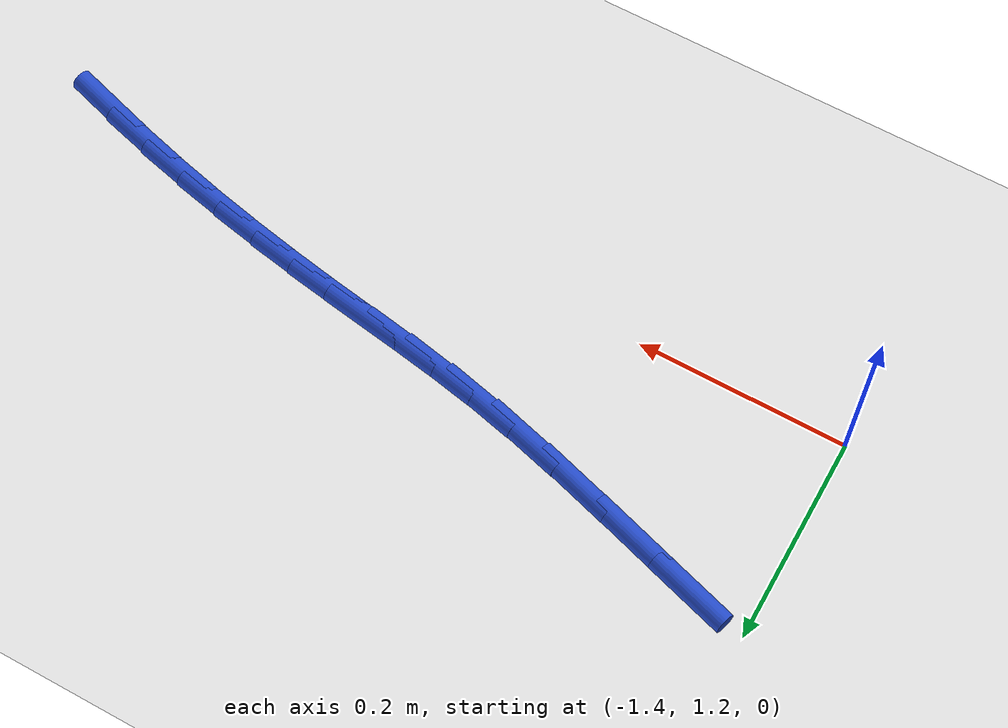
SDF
<sdf version="1.6">
 <world name="default">
  <model name="ground_plane">
   <static>1</static>
   <link name="link">
    <collision name="collision">
     <geometry><plane><normal>0 0 1</normal><size>100 100</size></plane></geometry>
     <surface><friction><ode><mu>100</mu><mu2>50</mu2></ode></friction></surface>
    </collision>
    <visual name="visual">
     <cast_shadows>0</cast_shadows>
     <geometry><plane><normal>0 0 1</normal><size>100 100</size></plane></geometry>
     <material>
      <script><uri>file://media/materials/scripts/gazebo.material</uri><name>Gazebo/WhiteGlow</name></script>
     </material>
    </visual>
   </link>
  </model>
  <model name="line">
   <link name="link_32">
    <pose>-0.6644574654117111 1.2277561059917397 0.01 0 1.57 -0.29490630756532477</pose>
    <collision name="collision">
     <geometry><cylinder><radius>0.01</radius><length>0.08</length></cylinder></geometry>
    </collision>
    <visual name="visual">
     <material>
      <script><name>Gazebo/Blue</name><uri>file://media/materials/scripts/gazebo.material</uri></script>
     </material>
     <geometry><cylinder><radius>0.01</radius><length>0.08</length></cylinder></geometry>
    </visual>
   </link>
   <link name="link_33">
    <pose>-0.7105668616627239 1.241762475067263 0.01 0 1.57 -0.26437578575754683</pose>
    <collision name="collision">
     <geometry><cylinder><radius>0.01</radius><length>0.08</length></cylinder></geometry>
    </collision>
    <visual name="visual">
     <material>
      <script><name>Gazebo/Blue</name><uri>file://media/materials/scripts/gazebo.material</uri></script>
     </material>
     <geometry><cylinder><radius>0.01</radius><length>0.08</length></cylinder></geometry>
    </visual>
   </link>
   <link name="link_34">
    <pose>-0.7567753072986521 1.254271678036543 0.01 0 1.57 -0.23747227886781153</pose>
    <collision name="collision">
     <geometry><cylinder><radius>0.01</radius><length>0.08</length></cylinder></geometry>
    </collision>
    <visual name="visual">
     <material>
      <script><name>Gazebo/Blue</name><uri>file://media/materials/scripts/gazebo.material</uri></script>
     </material>
     <geometry><cylinder><radius>0.01</radius><length>0.08</length></cylinder></geometry>
    </visual>
   </link>
   <link name="link_35">
    <pose>-0.8027489585882469 1.2653991064043624 0.01 0 1.57 -0.2138585798041829</pose>
    <collision name="collision">
     <geometry><cylinder><radius>0.01</radius><length>0.08</length></cylinder></geometry>
    </collision>
    <visual name="visual">
     <material>
      <script><name>Gazebo/Blue</name><uri>file://media/materials/scripts/gazebo.material</uri></script>
     </material>
     <geometry><cylinder><radius>0.01</radius><length>0.08</length></cylinder></geometry>
    </visual>
   </link>
   <link name="link_36">
    <pose>-0.8481539718002589 1.2752601516755047 0.01 0 1.57 -0.19327720304860432</pose>
    <collision name="collision">
     <geometry><cylinder><radius>0.01</radius><length>0.08</length></cylinder></geometry>
    </collision>
    <visual name="visual">
     <material>
      <script><name>Gazebo/Blue</name><uri>file://media/materials/scripts/gazebo.material</uri></script>
     </material>
     <geometry><cylinder><radius>0.01</radius><length>0.08</length></cylinder></geometry>
    </visual>
   </link>
   <link name="link_37">
    <pose>-0.8926565032034385 1.2839702053547524 0.01 0 1.57 -0.1755516325422416</pose>
    <collision name="collision">
     <geometry><cylinder><radius>0.01</radius><length>0.08</length></cylinder></geometry>
    </collision>
    <visual name="visual">
     <material>
      <script><name>Gazebo/Blue</name><uri>file://media/materials/scripts/gazebo.material</uri></script>
     </material>
     <geometry><cylinder><radius>0.01</radius><length>0.08</length></cylinder></geometry>
    </visual>
   </link>
   <link name="link_38">
    <pose>-0.9359227090665372 1.2916446589468895 0.01 0 1.57 -0.16073707792983374</pose>
    <collision name="collision">
     <geometry><cylinder><radius>0.01</radius><length>0.08</length></cylinder></geometry>
    </collision>
    <visual name="visual">
     <material>
      <script><name>Gazebo/Blue</name><uri>file://media/materials/scripts/gazebo.material</uri></script>
     </material>
     <geometry><cylinder><radius>0.01</radius><length>0.08</length></cylinder></geometry>
    </visual>
   </link>
   <link name="link_39">
    <pose>-0.9776432051211034 1.2984090459830482 0.01 0 1.57 -0.15516687904009258</pose>
    <collision name="collision">
     <geometry><cylinder><radius>0.01</radius><length>0.08</length></cylinder></geometry>
    </collision>
    <visual name="visual">
     <material>
      <script><name>Gazebo/Blue</name><uri>file://media/materials/scripts/gazebo.material</uri></script>
     </material>
     <geometry><cylinder><radius>0.01</radius><length>0.08</length></cylinder></geometry>
    </visual>
   </link>
   <link name="link_40">
    <pose>-1.0185002475422786 1.3048000800595643 0.01 0 1.57 -0.1674767321174801</pose>
    <collision name="collision">
     <geometry><cylinder><radius>0.01</radius><length>0.08</length></cylinder></geometry>
    </collision>
    <visual name="visual">
     <material>
      <script><name>Gazebo/Blue</name><uri>file://media/materials/scripts/gazebo.material</uri></script>
     </material>
     <geometry><cylinder><radius>0.01</radius><length>0.08</length></cylinder></geometry>
    </visual>
   </link>
   <link name="link_41">
    <pose>-1.0604883690901856 1.3118986054355204 0.01 0 1.57 -0.1949155802885259</pose>
    <collision name="collision">
     <geometry><cylinder><radius>0.01</radius><length>0.08</length></cylinder></geometry>
    </collision>
    <visual name="visual">
     <material>
      <script><name>Gazebo/Blue</name><uri>file://media/materials/scripts/gazebo.material</uri></script>
     </material>
     <geometry><cylinder><radius>0.01</radius><length>0.08</length></cylinder></geometry>
    </visual>
   </link>
   <link name="link_42">
    <pose>-1.1056922711747488 1.320822854469228 0.01 0 1.57 -0.23080585838114384</pose>
    <collision name="collision">
     <geometry><cylinder><radius>0.01</radius><length>0.08</length></cylinder></geometry>
    </collision>
    <visual name="visual">
     <material>
      <script><name>Gazebo/Blue</name><uri>file://media/materials/scripts/gazebo.material</uri></script>
     </material>
     <geometry><cylinder><radius>0.01</radius><length>0.08</length></cylinder></geometry>
    </visual>
   </link>
   <link name="link_43">
    <pose>-1.156196655205893 1.3326910595189985 0.01 0 1.57 -0.2674565600984572</pose>
    <collision name="collision">
     <geometry><cylinder><radius>0.01</radius><length>0.08</length></cylinder></geometry>
    </collision>
    <visual name="visual">
     <material>
      <script><name>Gazebo/Blue</name><uri>file://media/materials/scripts/gazebo.material</uri></script>
     </material>
     <geometry><cylinder><radius>0.01</radius><length>0.08</length></cylinder></geometry>
    </visual>
   </link>
   <link name="link_44">
    <pose>-1.2138484750460428 1.348488915038708 0.01 0 1.57 -0.2908408814250058</pose>
    <collision name="collision">
     <geometry><cylinder><radius>0.01</radius><length>0.08</length></cylinder></geometry>
    </collision>
    <visual name="visual">
     <material>
      <script><name>Gazebo/Blue</name><uri>file://media/materials/scripts/gazebo.material</uri></script>
     </material>
     <geometry><cylinder><radius>0.01</radius><length>0.08</length></cylinder></geometry>
    </visual>
   </link>
   <link name="link_45">
    <pose>-1.2775348231260304 1.3675520718300984 0.01 0 1.57 -0.2992209934138235</pose>
    <collision name="collision">
     <geometry><cylinder><radius>0.01</radius><length>0.08</length></cylinder></geometry>
    </collision>
    <visual name="visual">
     <material>
      <script><name>Gazebo/Blue</name><uri>file://media/materials/scripts/gazebo.material</uri></script>
     </material>
     <geometry><cylinder><radius>0.01</radius><length>0.08</length></cylinder></geometry>
    </visual>
   </link>
   <link name="link_46">
    <pose>-1.3441357934737994 1.3880973327180508 0.01 0 1.57 -0.295815088353115</pose>
    <collision name="collision">
     <geometry><cylinder><radius>0.01</radius><length>0.08</length></cylinder></geometry>
    </collision>
    <visual name="visual">
     <material>
      <script><name>Gazebo/Blue</name><uri>file://media/materials/scripts/gazebo.material</uri></script>
     </material>
     <geometry><cylinder><radius>0.01</radius><length>0.08</length></cylinder></geometry>
    </visual>
   </link>
  </model>
 </world>
</sdf>
